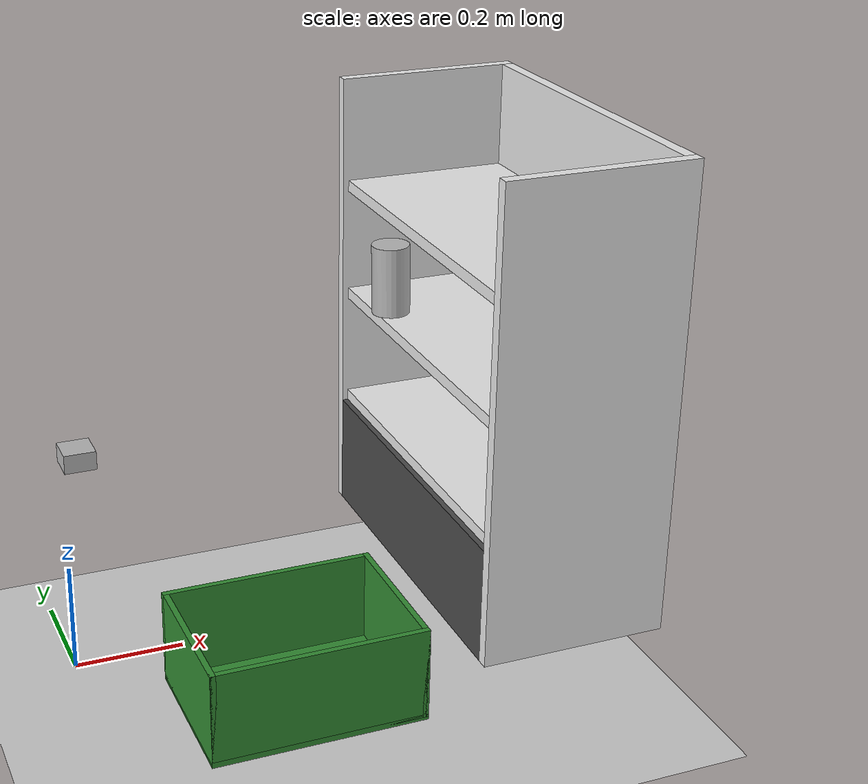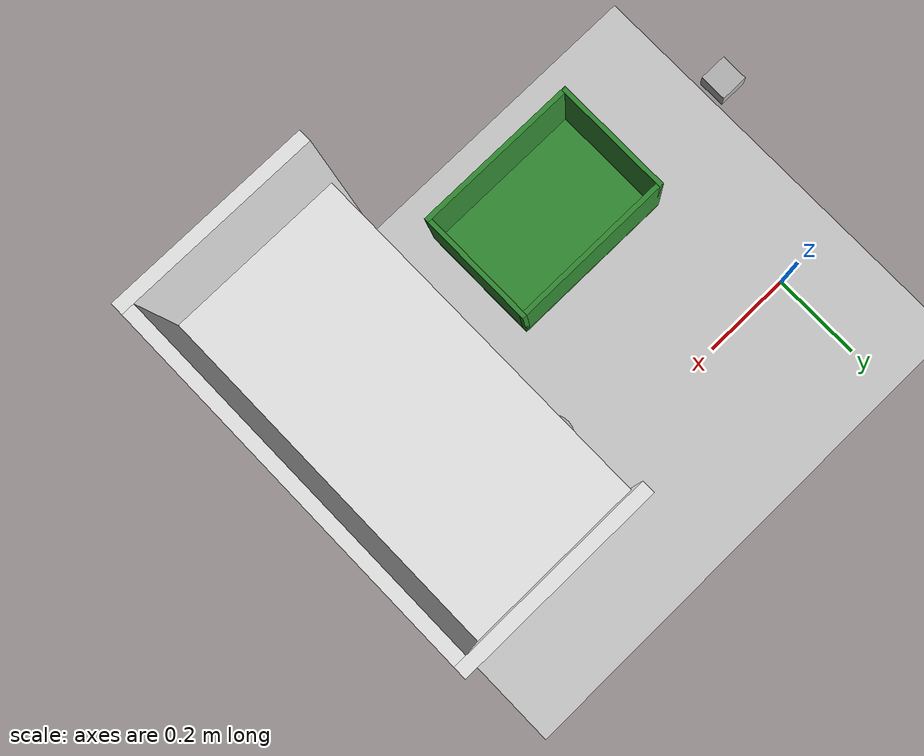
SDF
<sdf version="1.7">
 <world name="default">
  <plugin name="ros_link_attacher_plugin" filename="libgazebo_ros_link_attacher.so"/>
  <physics type="ode">
   <max_step_size>0.001</max_step_size>
   <real_time_factor>1</real_time_factor>
   <real_time_update_rate>1000</real_time_update_rate>
  </physics>
  <gravity>0 0 -9.8</gravity>
  <light name="sun" type="directional">
   <pose>0 0 10 0 -0 0</pose>
   <diffuse>0.8 0.8 0.8 1</diffuse>
   <specular>0.2 0.2 0.2 1</specular>
   <attenuation>
    <range>1000</range>
    <constant>0.9</constant>
    <linear>0.01</linear>
    <quadratic>0.001</quadratic>
   </attenuation>
   <direction>-0.5 0.1 -0.9</direction>
   <spot><inner_angle>0</inner_angle><outer_angle>0</outer_angle><falloff>0</falloff></spot>
  </light>
  <model name="ground_plane">
   <static>1</static>
   <link name="link">
    <collision name="collision">
     <geometry><plane><normal>0 0 1</normal><size>100 100</size></plane></geometry>
     <surface><friction><ode><mu>100</mu><mu2>50</mu2></ode></friction></surface>
    </collision>
    <visual name="visual">
     <cast_shadows>0</cast_shadows>
     <geometry><plane><normal>0 0 1</normal><size>100 100</size></plane></geometry>
     <material>
      <script><uri>file://media/materials/scripts/gazebo.material</uri><name>Gazebo/Grey</name></script>
     </material>
    </visual>
   </link>
  </model>
  <model name="depth_camera_model">
   <static>1</static>
   <pose>-0.032146 -0.289119 0.562988 0 -0 0</pose>
   <link name="depth_camera_link">
    <visual name="depth_camera_body"><geometry><box><size>0.05 0.05 0.03</size></box></geometry></visual>
    <sensor name="depth_camera" type="depth">
     <always_on>1</always_on>
     <update_rate>30</update_rate>
     <camera>
      <horizontal_fov>1.047</horizontal_fov>
      <image><width>640</width><height>480</height><format>R8G8B8</format></image>
      <clip><near>0.1</near><far>3</far></clip>
     </camera>
     <visualize>1</visualize>
     <plugin name="camera_controller" filename="libgazebo_ros_openni_kinect.so">
      <cameraName>depth_camera</cameraName>
      <alwaysOn>1</alwaysOn>
      <updateRate>30.0</updateRate>
      <imageTopicName>/camera/color/image_raw</imageTopicName>
      <cameraInfoTopicName>/camera/color/camera_info</cameraInfoTopicName>
      <depthImageTopicName>/camera/depth/image_raw</depthImageTopicName>
      <pointCloudTopicName>/camera/depth/points</pointCloudTopicName>
      <frameName>depth_camera_link</frameName>
     </plugin>
    </sensor>
   </link>
  </model>
  <scene><ambient>0.4 0.4 0.4 1</ambient><background>0.7 0.7 0.7 1</background><shadows>1</shadows></scene>
  <magnetic_field>6e-06 2.3e-05 -4.2e-05</magnetic_field>
  <atmosphere type="adiabatic"/>
  <spherical_coordinates>
   <surface_model>EARTH_WGS84</surface_model>
   <latitude_deg>0</latitude_deg>
   <longitude_deg>0</longitude_deg>
   <elevation>0</elevation>
   <heading_deg>0</heading_deg>
  </spherical_coordinates>
  <model name="narrow_supermarket_shelf_enclosed_0">
   <static>1</static>
   <link name="link">
    <collision name="base_collision">
     <pose>0 0 0.1 0 -0 0</pose>
     <geometry><box><size>0.32 0.6 0.2</size></box></geometry>
    </collision>
    <visual name="base_visual">
     <pose>0 0 0.1 0 -0 0</pose>
     <geometry><box><size>0.32 0.6 0.2</size></box></geometry>
     <material>
      <script><uri>file://media/materials/scripts/gazebo.material</uri><name>Gazebo/DarkGrey</name></script>
     </material>
    </visual>
    <collision name="backboard_collision">
     <pose>0.15 0 0.4 0 -0 0</pose>
     <geometry><box><size>0.02 0.6 0.8</size></box></geometry>
    </collision>
    <visual name="backboard_visual">
     <pose>0.15 0 0.4 0 -0 0</pose>
     <geometry><box><size>0.02 0.6 0.8</size></box></geometry>
     <material>
      <script><uri>file://media/materials/scripts/gazebo.material</uri><name>Gazebo/White</name></script>
     </material>
    </visual>
    <collision name="sidepanel_left_collision">
     <pose>0 0.31 0.4 0 -0 0</pose>
     <geometry><box><size>0.32 0.02 0.8</size></box></geometry>
    </collision>
    <visual name="sidepanel_left_visual">
     <pose>0 0.31 0.4 0 -0 0</pose>
     <geometry><box><size>0.32 0.02 0.8</size></box></geometry>
     <material>
      <script><uri>file://media/materials/scripts/gazebo.material</uri><name>Gazebo/White</name></script>
     </material>
    </visual>
    <collision name="sidepanel_right_collision">
     <pose>0 -0.31 0.4 0 -0 0</pose>
     <geometry><box><size>0.32 0.02 0.8</size></box></geometry>
    </collision>
    <visual name="sidepanel_right_visual">
     <pose>0 -0.31 0.4 0 -0 0</pose>
     <geometry><box><size>0.32 0.02 0.8</size></box></geometry>
     <material>
      <script><uri>file://media/materials/scripts/gazebo.material</uri><name>Gazebo/White</name></script>
     </material>
    </visual>
    <collision name="shelf_bottom_collision">
     <pose>0 0 0.21 0 -0 0</pose>
     <geometry><box><size>0.3 0.6 0.02</size></box></geometry>
    </collision>
    <visual name="shelf_bottom_visual">
     <pose>0 0 0.21 0 -0 0</pose>
     <geometry><box><size>0.3 0.6 0.02</size></box></geometry>
     <material>
      <script><uri>file://media/materials/scripts/gazebo.material</uri><name>Gazebo/White</name></script>
     </material>
    </visual>
    <collision name="shelf_middle_collision">
     <pose>0 0 0.41 0 -0 0</pose>
     <geometry><box><size>0.3 0.6 0.02</size></box></geometry>
    </collision>
    <visual name="shelf_middle_visual">
     <pose>0 0 0.41 0 -0 0</pose>
     <geometry><box><size>0.3 0.6 0.02</size></box></geometry>
     <material>
      <script><uri>file://media/materials/scripts/gazebo.material</uri><name>Gazebo/White</name></script>
     </material>
    </visual>
    <collision name="shelf_top_collision">
     <pose>0 0 0.61 0 -0 0</pose>
     <geometry><box><size>0.3 0.6 0.02</size></box></geometry>
    </collision>
    <visual name="shelf_top_visual">
     <pose>0 0 0.61 0 -0 0</pose>
     <geometry><box><size>0.3 0.6 0.02</size></box></geometry>
     <material>
      <script><uri>file://media/materials/scripts/gazebo.material</uri><name>Gazebo/White</name></script>
     </material>
    </visual>
   </link>
   <pose>0.703329 -0.224789 0.205537 0 0 -0.00148</pose>
  </model>
  <model name="beer">
   <link name="link">
    <pose>0 0 0.0615 0 -0 0</pose>
    <inertial>
     <mass>0.35</mass>
     <inertia>
      <ixx>0.000536</ixx>
      <ixy>0</ixy>
      <ixz>0</ixz>
      <iyy>0.000536</iyy>
      <iyz>0</iyz>
      <izz>0.00019</izz>
     </inertia>
    </inertial>
    <collision name="collision">
     <geometry><cylinder><radius>0.033</radius><length>0.123</length></cylinder></geometry>
     <surface>
      <friction><ode><mu>100</mu><mu2>100</mu2><fdir1>0 0 0</fdir1><slip1>0</slip1><slip2>0</slip2></ode></friction>
      <contact><ode><kp>1e+06</kp><kd>1</kd><min_depth>0.001</min_depth><max_vel>0.1</max_vel></ode></contact>
     </surface>
    </collision>
    <visual name="visual">
     <geometry><cylinder><radius>0.033</radius><length>0.123</length></cylinder></geometry>
     <material>
      <script>
       <uri>model://Beer/materials/scripts</uri>
       <uri>model://Beer/materials/textures</uri>
       <name>Beer/Diffuse</name>
      </script>
     </material>
    </visual>
   </link>
   <pose>0.580513 -0.057971 0.625103 0.012146 0.012144 -2.97695</pose>
  </model>
  <model name="grasp_basket_0">
   <static>1</static>
   <allow_auto_disable>0</allow_auto_disable>
   <link name="basket_link">
    <collision name="base_collision">
     <pose>0 0 0.005 0 -0 0</pose>
     <geometry><box><size>0.36 0.26 0.01</size></box></geometry>
     <surface>
      <friction><ode><mu>100</mu><mu2>100</mu2><slip1>0</slip1><slip2>0</slip2></ode></friction>
      <contact><ode><kp>2e+06</kp><kd>5</kd><min_depth>0.001</min_depth><max_vel>0.05</max_vel></ode></contact>
     </surface>
    </collision>
    <visual name="base_visual">
     <pose>0 0 0.005 0 -0 0</pose>
     <geometry><box><size>0.36 0.26 0.01</size></box></geometry>
     <material>
      <ambient>0.15 0.35 0.15 1</ambient>
      <diffuse>0.2 0.55 0.2 1</diffuse>
      <specular>0.05 0.05 0.05 1</specular>
     </material>
    </visual>
    <collision name="front_wall_collision">
     <pose>0 0.125 0.085 0 -0 0</pose>
     <geometry><box><size>0.36 0.01 0.16</size></box></geometry>
     <surface>
      <friction><ode><mu>100</mu><mu2>100</mu2></ode></friction>
      <contact><ode><kp>2e+06</kp><kd>5</kd><min_depth>0.001</min_depth><max_vel>0.05</max_vel></ode></contact>
     </surface>
    </collision>
    <visual name="front_wall_visual">
     <pose>0 0.125 0.085 0 -0 0</pose>
     <geometry><box><size>0.36 0.01 0.16</size></box></geometry>
     <material>
      <ambient>0.15 0.35 0.15 1</ambient>
      <diffuse>0.2 0.55 0.2 1</diffuse>
      <specular>0.05 0.05 0.05 1</specular>
     </material>
    </visual>
    <collision name="back_wall_collision">
     <pose>0 -0.125 0.085 0 -0 0</pose>
     <geometry><box><size>0.36 0.01 0.16</size></box></geometry>
     <surface>
      <friction><ode><mu>100</mu><mu2>100</mu2></ode></friction>
      <contact><ode><kp>2e+06</kp><kd>5</kd><min_depth>0.001</min_depth><max_vel>0.05</max_vel></ode></contact>
     </surface>
    </collision>
    <visual name="back_wall_visual">
     <pose>0 -0.125 0.085 0 -0 0</pose>
     <geometry><box><size>0.36 0.01 0.16</size></box></geometry>
     <material>
      <ambient>0.15 0.35 0.15 1</ambient>
      <diffuse>0.2 0.55 0.2 1</diffuse>
      <specular>0.05 0.05 0.05 1</specular>
     </material>
    </visual>
    <collision name="left_wall_collision">
     <pose>0.175 0 0.085 0 -0 0</pose>
     <geometry><box><size>0.01 0.26 0.16</size></box></geometry>
     <surface>
      <friction><ode><mu>100</mu><mu2>100</mu2></ode></friction>
      <contact><ode><kp>2e+06</kp><kd>5</kd><min_depth>0.001</min_depth><max_vel>0.05</max_vel></ode></contact>
     </surface>
    </collision>
    <visual name="left_wall_visual">
     <pose>0.175 0 0.085 0 -0 0</pose>
     <geometry><box><size>0.01 0.26 0.16</size></box></geometry>
     <material>
      <ambient>0.15 0.35 0.15 1</ambient>
      <diffuse>0.2 0.55 0.2 1</diffuse>
      <specular>0.05 0.05 0.05 1</specular>
     </material>
    </visual>
    <collision name="right_wall_collision">
     <pose>-0.175 0 0.085 0 -0 0</pose>
     <geometry><box><size>0.01 0.26 0.16</size></box></geometry>
     <surface>
      <friction><ode><mu>100</mu><mu2>100</mu2></ode></friction>
      <contact><ode><kp>2e+06</kp><kd>5</kd><min_depth>0.001</min_depth><max_vel>0.05</max_vel></ode></contact>
     </surface>
    </collision>
    <visual name="right_wall_visual">
     <pose>-0.175 0 0.085 0 -0 0</pose>
     <geometry><box><size>0.01 0.26 0.16</size></box></geometry>
     <material>
      <ambient>0.15 0.35 0.15 1</ambient>
      <diffuse>0.2 0.55 0.2 1</diffuse>
      <specular>0.05 0.05 0.05 1</specular>
     </material>
    </visual>
   </link>
   <pose>0.273474 -0.403629 0.122563 0 -0 0</pose>
  </model>
 </world>
</sdf>
